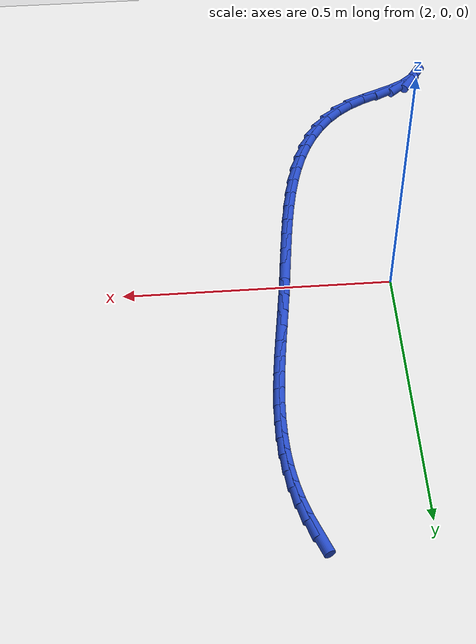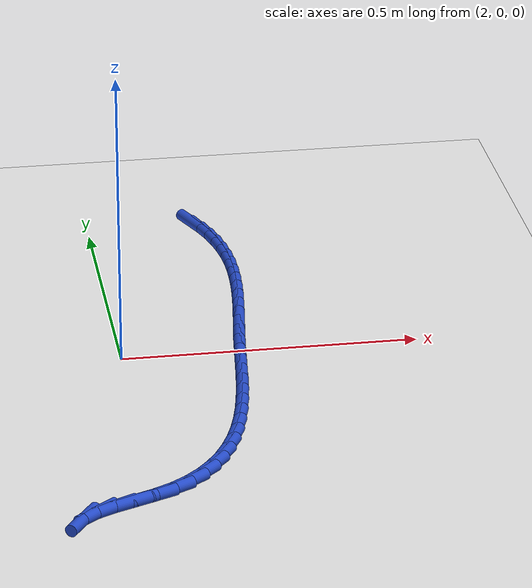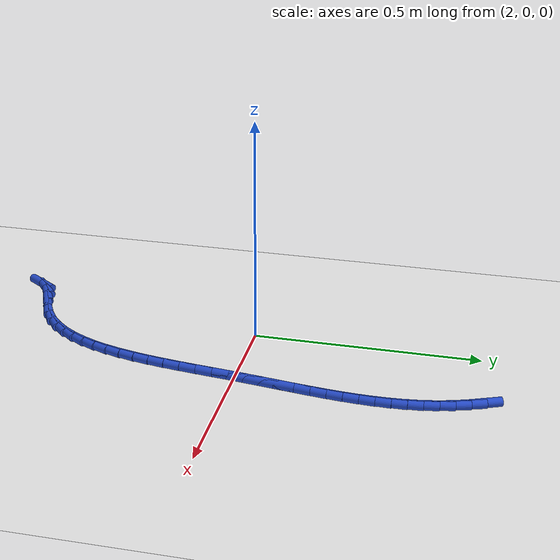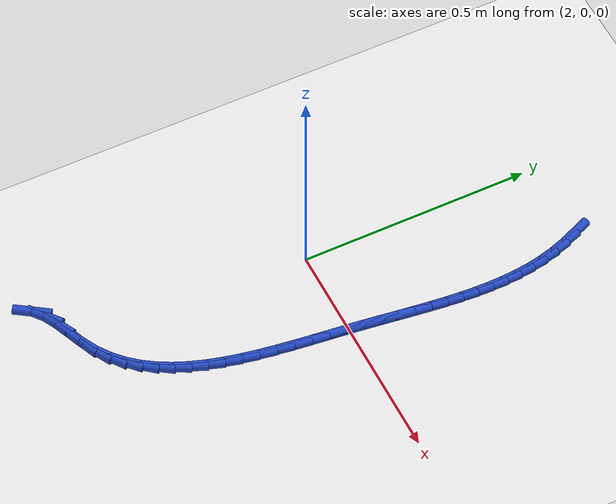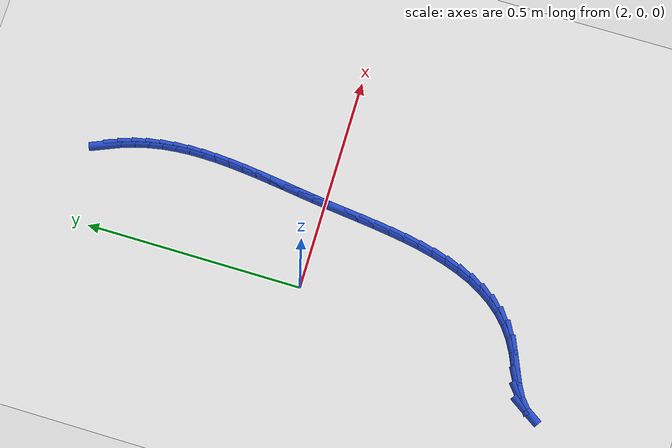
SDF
<sdf version="1.6">
 <world name="default">
  <model name="ground_plane">
   <static>1</static>
   <link name="link">
    <collision name="collision">
     <geometry><plane><normal>0 0 1</normal><size>100 100</size></plane></geometry>
     <surface><friction><ode><mu>100</mu><mu2>50</mu2></ode></friction></surface>
    </collision>
    <visual name="visual">
     <cast_shadows>0</cast_shadows>
     <geometry><plane><normal>0 0 1</normal><size>100 100</size></plane></geometry>
     <material>
      <script><uri>file://media/materials/scripts/gazebo.material</uri><name>Gazebo/WhiteGlow</name></script>
     </material>
    </visual>
   </link>
  </model>
  <model name="line">
   <link name="link_92">
    <pose>2.1891215795240035 0.5163245942954962 0.01 0 1.57 -1.177183736699852</pose>
    <collision name="collision">
     <geometry><cylinder><radius>0.01</radius><length>0.08</length></cylinder></geometry>
    </collision>
    <visual name="visual">
     <material>
      <script><name>Gazebo/Blue</name><uri>file://media/materials/scripts/gazebo.material</uri></script>
     </material>
     <geometry><cylinder><radius>0.01</radius><length>0.08</length></cylinder></geometry>
    </visual>
   </link>
   <link name="link_93">
    <pose>2.2016597920787926 0.4861327105939035 0.01 0 1.57 -1.2487492405869685</pose>
    <collision name="collision">
     <geometry><cylinder><radius>0.01</radius><length>0.08</length></cylinder></geometry>
    </collision>
    <visual name="visual">
     <material>
      <script><name>Gazebo/Blue</name><uri>file://media/materials/scripts/gazebo.material</uri></script>
     </material>
     <geometry><cylinder><radius>0.01</radius><length>0.08</length></cylinder></geometry>
    </visual>
   </link>
   <link name="link_94">
    <pose>2.2118477567196826 0.45559900037691425 0.01 0 1.57 -1.3221783069310495</pose>
    <collision name="collision">
     <geometry><cylinder><radius>0.01</radius><length>0.08</length></cylinder></geometry>
    </collision>
    <visual name="visual">
     <material>
      <script><name>Gazebo/Blue</name><uri>file://media/materials/scripts/gazebo.material</uri></script>
     </material>
     <geometry><cylinder><radius>0.01</radius><length>0.08</length></cylinder></geometry>
    </visual>
   </link>
   <link name="link_95">
    <pose>2.219672559167944 0.4247769595458482 0.01 0 1.57 -1.3910001055549648</pose>
    <collision name="collision">
     <geometry><cylinder><radius>0.01</radius><length>0.08</length></cylinder></geometry>
    </collision>
    <visual name="visual">
     <material>
      <script><name>Gazebo/Blue</name><uri>file://media/materials/scripts/gazebo.material</uri></script>
     </material>
     <geometry><cylinder><radius>0.01</radius><length>0.08</length></cylinder></geometry>
    </visual>
   </link>
   <link name="link_96">
    <pose>2.225330201075131 0.39364979894189717 0.01 0 1.57 -1.4538843072534233</pose>
    <collision name="collision">
     <geometry><cylinder><radius>0.01</radius><length>0.08</length></cylinder></geometry>
    </collision>
    <visual name="visual">
     <material>
      <script><name>Gazebo/Blue</name><uri>file://media/materials/scripts/gazebo.material</uri></script>
     </material>
     <geometry><cylinder><radius>0.01</radius><length>0.08</length></cylinder></geometry>
    </visual>
   </link>
   <link name="link_97">
    <pose>2.2290241128329864 0.36219823017390435 0.01 0 1.57 -1.5100566694859656</pose>
    <collision name="collision">
     <geometry><cylinder><radius>0.01</radius><length>0.08</length></cylinder></geometry>
    </collision>
    <visual name="visual">
     <material>
      <script><name>Gazebo/Blue</name><uri>file://media/materials/scripts/gazebo.material</uri></script>
     </material>
     <geometry><cylinder><radius>0.01</radius><length>0.08</length></cylinder></geometry>
    </visual>
   </link>
   <link name="link_98">
    <pose>2.2309577248332535 0.33040296485071297 0.01 0 1.57 -1.559081591166877</pose>
    <collision name="collision">
     <geometry><cylinder><radius>0.01</radius><length>0.08</length></cylinder></geometry>
    </collision>
    <visual name="visual">
     <material>
      <script><name>Gazebo/Blue</name><uri>file://media/materials/scripts/gazebo.material</uri></script>
     </material>
     <geometry><cylinder><radius>0.01</radius><length>0.08</length></cylinder></geometry>
    </visual>
   </link>
   <link name="link_99">
    <pose>2.2313344674676743 0.29824471458116725 0.01 0 1.57 1.5407905649820015</pose>
    <collision name="collision">
     <geometry><cylinder><radius>0.01</radius><length>0.08</length></cylinder></geometry>
    </collision>
    <visual name="visual">
     <material>
      <script><name>Gazebo/Blue</name><uri>file://media/materials/scripts/gazebo.material</uri></script>
     </material>
     <geometry><cylinder><radius>0.01</radius><length>0.08</length></cylinder></geometry>
    </visual>
   </link>
   <link name="link_100">
    <pose>2.230357771127995 0.26570419097411035 0.01 0 1.57 1.5063268899061648</pose>
    <collision name="collision">
     <geometry><cylinder><radius>0.01</radius><length>0.08</length></cylinder></geometry>
    </collision>
    <visual name="visual">
     <material>
      <script><name>Gazebo/Blue</name><uri>file://media/materials/scripts/gazebo.material</uri></script>
     </material>
     <geometry><cylinder><radius>0.01</radius><length>0.08</length></cylinder></geometry>
    </visual>
   </link>
   <link name="link_101">
    <pose>2.2282310662059555 0.2327621056383864 0.01 0 1.57 1.478938871908893</pose>
    <collision name="collision">
     <geometry><cylinder><radius>0.01</radius><length>0.08</length></cylinder></geometry>
    </collision>
    <visual name="visual">
     <material>
      <script><name>Gazebo/Blue</name><uri>file://media/materials/scripts/gazebo.material</uri></script>
     </material>
     <geometry><cylinder><radius>0.01</radius><length>0.08</length></cylinder></geometry>
    </visual>
   </link>
   <link name="link_102">
    <pose>2.2251577830933 0.19939917018283823 0.01 0 1.57 1.4583705157496916</pose>
    <collision name="collision">
     <geometry><cylinder><radius>0.01</radius><length>0.08</length></cylinder></geometry>
    </collision>
    <visual name="visual">
     <material>
      <script><name>Gazebo/Blue</name><uri>file://media/materials/scripts/gazebo.material</uri></script>
     </material>
     <geometry><cylinder><radius>0.01</radius><length>0.08</length></cylinder></geometry>
    </visual>
   </link>
   <link name="link_103">
    <pose>2.221341352181773 0.16559609621631033 0.01 0 1.57 1.444334412356547</pose>
    <collision name="collision">
     <geometry><cylinder><radius>0.01</radius><length>0.08</length></cylinder></geometry>
    </collision>
    <visual name="visual">
     <material>
      <script><name>Gazebo/Blue</name><uri>file://media/materials/scripts/gazebo.material</uri></script>
     </material>
     <geometry><cylinder><radius>0.01</radius><length>0.08</length></cylinder></geometry>
    </visual>
   </link>
   <link name="link_104">
    <pose>2.216985203863116 0.13133359534764544 0.01 0 1.57 1.4365405692276831</pose>
    <collision name="collision">
     <geometry><cylinder><radius>0.01</radius><length>0.08</length></cylinder></geometry>
    </collision>
    <visual name="visual">
     <material>
      <script><name>Gazebo/Blue</name><uri>file://media/materials/scripts/gazebo.material</uri></script>
     </material>
     <geometry><cylinder><radius>0.01</radius><length>0.08</length></cylinder></geometry>
    </visual>
   </link>
   <link name="link_105">
    <pose>2.2122927685290734 0.09659237918568805 0.01 0 1.57 1.4347130322385286</pose>
    <collision name="collision">
     <geometry><cylinder><radius>0.01</radius><length>0.08</length></cylinder></geometry>
    </collision>
    <visual name="visual">
     <material>
      <script><name>Gazebo/Blue</name><uri>file://media/materials/scripts/gazebo.material</uri></script>
     </material>
     <geometry><cylinder><radius>0.01</radius><length>0.08</length></cylinder></geometry>
    </visual>
   </link>
   <link name="link_106">
    <pose>2.2074674765713875 0.0613531593392808 0.01 0 1.57 1.438596994711306</pose>
    <collision name="collision">
     <geometry><cylinder><radius>0.01</radius><length>0.08</length></cylinder></geometry>
    </collision>
    <visual name="visual">
     <material>
      <script><name>Gazebo/Blue</name><uri>file://media/materials/scripts/gazebo.material</uri></script>
     </material>
     <geometry><cylinder><radius>0.01</radius><length>0.08</length></cylinder></geometry>
    </visual>
   </link>
   <link name="link_107">
    <pose>2.202712758381802 0.02559664741726829 0.01 0 1.57 1.4475649870433545</pose>
    <collision name="collision">
     <geometry><cylinder><radius>0.01</radius><length>0.08</length></cylinder></geometry>
    </collision>
    <visual name="visual">
     <material>
      <script><name>Gazebo/Blue</name><uri>file://media/materials/scripts/gazebo.material</uri></script>
     </material>
     <geometry><cylinder><radius>0.01</radius><length>0.08</length></cylinder></geometry>
    </visual>
   </link>
   <link name="link_108">
    <pose>2.198218463048343 -0.010688945268054223 0.01 0 1.57 1.4548209831541135</pose>
    <collision name="collision">
     <geometry><cylinder><radius>0.01</radius><length>0.08</length></cylinder></geometry>
    </collision>
    <visual name="visual">
     <material>
      <script><name>Gazebo/Blue</name><uri>file://media/materials/scripts/gazebo.material</uri></script>
     </material>
     <geometry><cylinder><radius>0.01</radius><length>0.08</length></cylinder></geometry>
    </visual>
   </link>
   <link name="link_109">
    <pose>2.1939431297584338 -0.04738767624570538 0.01 0 1.57 1.454982678013074</pose>
    <collision name="collision">
     <geometry><cylinder><radius>0.01</radius><length>0.08</length></cylinder></geometry>
    </collision>
    <visual name="visual">
     <material>
      <script><name>Gazebo/Blue</name><uri>file://media/materials/scripts/gazebo.material</uri></script>
     </material>
     <geometry><cylinder><radius>0.01</radius><length>0.08</length></cylinder></geometry>
    </visual>
   </link>
   <link name="link_110">
    <pose>2.1896516752748982 -0.08427668320869014 0.01 0 1.57 1.447991571972358</pose>
    <collision name="collision">
     <geometry><cylinder><radius>0.01</radius><length>0.08</length></cylinder></geometry>
    </collision>
    <visual name="visual">
     <material>
      <script><name>Gazebo/Blue</name><uri>file://media/materials/scripts/gazebo.material</uri></script>
     </material>
     <geometry><cylinder><radius>0.01</radius><length>0.08</length></cylinder></geometry>
    </visual>
   </link>
   <link name="link_111">
    <pose>2.1851030473674116 -0.12112980772473116 0.01 0 1.57 1.4337353139637838</pose>
    <collision name="collision">
     <geometry><cylinder><radius>0.01</radius><length>0.08</length></cylinder></geometry>
    </collision>
    <visual name="visual">
     <material>
      <script><name>Gazebo/Blue</name><uri>file://media/materials/scripts/gazebo.material</uri></script>
     </material>
     <geometry><cylinder><radius>0.01</radius><length>0.08</length></cylinder></geometry>
    </visual>
   </link>
   <link name="link_112">
    <pose>2.1800561938056493 -0.1577208913615524 0.01 0 1.57 1.4118799168194283</pose>
    <collision name="collision">
     <geometry><cylinder><radius>0.01</radius><length>0.08</length></cylinder></geometry>
    </collision>
    <visual name="visual">
     <material>
      <script><name>Gazebo/Blue</name><uri>file://media/materials/scripts/gazebo.material</uri></script>
     </material>
     <geometry><cylinder><radius>0.01</radius><length>0.08</length></cylinder></geometry>
    </visual>
   </link>
   <link name="link_113">
    <pose>2.1742700623592874 -0.1938237756868776 0.01 0 1.57 1.381871667945755</pose>
    <collision name="collision">
     <geometry><cylinder><radius>0.01</radius><length>0.08</length></cylinder></geometry>
    </collision>
    <visual name="visual">
     <material>
      <script><name>Gazebo/Blue</name><uri>file://media/materials/scripts/gazebo.material</uri></script>
     </material>
     <geometry><cylinder><radius>0.01</radius><length>0.08</length></cylinder></geometry>
    </visual>
   </link>
   <link name="link_114">
    <pose>2.1675036007980015 -0.22921230226843106 0.01 0 1.57 1.3429420476257234</pose>
    <collision name="collision">
     <geometry><cylinder><radius>0.01</radius><length>0.08</length></cylinder></geometry>
    </collision>
    <visual name="visual">
     <material>
      <script><name>Gazebo/Blue</name><uri>file://media/materials/scripts/gazebo.material</uri></script>
     </material>
     <geometry><cylinder><radius>0.01</radius><length>0.08</length></cylinder></geometry>
    </visual>
   </link>
   <link name="link_115">
    <pose>2.1595157568914667 -0.2636603126739347 0.01 0 1.57 1.2941273582503952</pose>
    <collision name="collision">
     <geometry><cylinder><radius>0.01</radius><length>0.08</length></cylinder></geometry>
    </collision>
    <visual name="visual">
     <material>
      <script><name>Gazebo/Blue</name><uri>file://media/materials/scripts/gazebo.material</uri></script>
     </material>
     <geometry><cylinder><radius>0.01</radius><length>0.08</length></cylinder></geometry>
    </visual>
   </link>
   <link name="link_116">
    <pose>2.1500654784093594 -0.2969416484711129 0.01 0 1.57 1.2343229661729487</pose>
    <collision name="collision">
     <geometry><cylinder><radius>0.01</radius><length>0.08</length></cylinder></geometry>
    </collision>
    <visual name="visual">
     <material>
      <script><name>Gazebo/Blue</name><uri>file://media/materials/scripts/gazebo.material</uri></script>
     </material>
     <geometry><cylinder><radius>0.01</radius><length>0.08</length></cylinder></geometry>
    </visual>
   </link>
   <link name="link_117">
    <pose>2.1389117131213533 -0.32883015122768927 0.01 0 1.57 1.1624027187147477</pose>
    <collision name="collision">
     <geometry><cylinder><radius>0.01</radius><length>0.08</length></cylinder></geometry>
    </collision>
    <visual name="visual">
     <material>
      <script><name>Gazebo/Blue</name><uri>file://media/materials/scripts/gazebo.material</uri></script>
     </material>
     <geometry><cylinder><radius>0.01</radius><length>0.08</length></cylinder></geometry>
    </visual>
   </link>
   <link name="link_118">
    <pose>2.125813408797127 -0.3590996625113882 0.01 0 1.57 1.0774423337565673</pose>
    <collision name="collision">
     <geometry><cylinder><radius>0.01</radius><length>0.08</length></cylinder></geometry>
    </collision>
    <visual name="visual">
     <material>
      <script><name>Gazebo/Blue</name><uri>file://media/materials/scripts/gazebo.material</uri></script>
     </material>
     <geometry><cylinder><radius>0.01</radius><length>0.08</length></cylinder></geometry>
    </visual>
   </link>
   <link name="link_119">
    <pose>2.1105295132063544 -0.3875240238899317 0.01 0 1.57 0.9790768439741768</pose>
    <collision name="collision">
     <geometry><cylinder><radius>0.01</radius><length>0.08</length></cylinder></geometry>
    </collision>
    <visual name="visual">
     <material>
      <script><name>Gazebo/Blue</name><uri>file://media/materials/scripts/gazebo.material</uri></script>
     </material>
     <geometry><cylinder><radius>0.01</radius><length>0.08</length></cylinder></geometry>
    </visual>
   </link>
   <link name="link_120">
    <pose>2.09281897411871 -0.4138770769310439 0.01 0 1.57 0.8679701773034808</pose>
    <collision name="collision">
     <geometry><cylinder><radius>0.01</radius><length>0.08</length></cylinder></geometry>
    </collision>
    <visual name="visual">
     <material>
      <script><name>Gazebo/Blue</name><uri>file://media/materials/scripts/gazebo.material</uri></script>
     </material>
     <geometry><cylinder><radius>0.01</radius><length>0.08</length></cylinder></geometry>
    </visual>
   </link>
   <link name="link_121">
    <pose>2.072440739303871 -0.4379326632024487 0.01 0 1.57 0.7462601258808365</pose>
    <collision name="collision">
     <geometry><cylinder><radius>0.01</radius><length>0.08</length></cylinder></geometry>
    </collision>
    <visual name="visual">
     <material>
      <script><name>Gazebo/Blue</name><uri>file://media/materials/scripts/gazebo.material</uri></script>
     </material>
     <geometry><cylinder><radius>0.01</radius><length>0.08</length></cylinder></geometry>
    </visual>
   </link>
   <link name="link_122">
    <pose>2.049153756531512 -0.45946462427187 0.01 0 1.57 0.6177091577161753</pose>
    <collision name="collision">
     <geometry><cylinder><radius>0.01</radius><length>0.08</length></cylinder></geometry>
    </collision>
    <visual name="visual">
     <material>
      <script><name>Gazebo/Blue</name><uri>file://media/materials/scripts/gazebo.material</uri></script>
     </material>
     <geometry><cylinder><radius>0.01</radius><length>0.08</length></cylinder></geometry>
    </visual>
   </link>
   <link name="link_123">
    <pose>2.0227169735713098 -0.4782468017070305 0.01 0 1.57 0.4881146941221554</pose>
    <collision name="collision">
     <geometry><cylinder><radius>0.01</radius><length>0.08</length></cylinder></geometry>
    </collision>
    <visual name="visual">
     <material>
      <script><name>Gazebo/Blue</name><uri>file://media/materials/scripts/gazebo.material</uri></script>
     </material>
     <geometry><cylinder><radius>0.01</radius><length>0.08</length></cylinder></geometry>
    </visual>
   </link>
   <link name="link_124">
    <pose>1.9929148836875226 -0.494070784461387 0.01 0 1.57 0.39783227733306703</pose>
    <collision name="collision">
     <geometry><cylinder><radius>0.01</radius><length>0.08</length></cylinder></geometry>
    </collision>
    <visual name="visual">
     <material>
      <script><name>Gazebo/Blue</name><uri>file://media/materials/scripts/gazebo.material</uri></script>
     </material>
     <geometry><cylinder><radius>0.01</radius><length>0.08</length></cylinder></geometry>
    </visual>
   </link>
   <link name="link_125">
    <pose>1.960762019928871 -0.5075827149381585 0.01 0 1.57 0.39042146784970533</pose>
    <collision name="collision">
     <geometry><cylinder><radius>0.01</radius><length>0.08</length></cylinder></geometry>
    </collision>
    <visual name="visual">
     <material>
      <script><name>Gazebo/Blue</name><uri>file://media/materials/scripts/gazebo.material</uri></script>
     </material>
     <geometry><cylinder><radius>0.01</radius><length>0.08</length></cylinder></geometry>
    </visual>
   </link>
   <link name="link_126">
    <pose>1.9290232277144521 -0.5206447413097762 0.01 0 1.57 0.4735616647514022</pose>
    <collision name="collision">
     <geometry><cylinder><radius>0.01</radius><length>0.08</length></cylinder></geometry>
    </collision>
    <visual name="visual">
     <material>
      <script><name>Gazebo/Blue</name><uri>file://media/materials/scripts/gazebo.material</uri></script>
     </material>
     <geometry><cylinder><radius>0.01</radius><length>0.08</length></cylinder></geometry>
    </visual>
   </link>
   <link name="link_127">
    <pose>1.9005970283320568 -0.5352118812445864 0.01 0 1.57 0.6792994247899685</pose>
    <collision name="collision">
     <geometry><cylinder><radius>0.01</radius><length>0.08</length></cylinder></geometry>
    </collision>
    <visual name="visual">
     <material>
      <script><name>Gazebo/Blue</name><uri>file://media/materials/scripts/gazebo.material</uri></script>
     </material>
     <geometry><cylinder><radius>0.01</radius><length>0.08</length></cylinder></geometry>
    </visual>
   </link>
   <link name="link_128">
    <pose>1.8783207864825562 -0.553200020637917 0.01 0 1.57 0.9759992001878991</pose>
    <collision name="collision">
     <geometry><cylinder><radius>0.01</radius><length>0.08</length></cylinder></geometry>
    </collision>
    <visual name="visual">
     <material>
      <script><name>Gazebo/Blue</name><uri>file://media/materials/scripts/gazebo.material</uri></script>
     </material>
     <geometry><cylinder><radius>0.01</radius><length>0.08</length></cylinder></geometry>
    </visual>
   </link>
  </model>
 </world>
</sdf>
